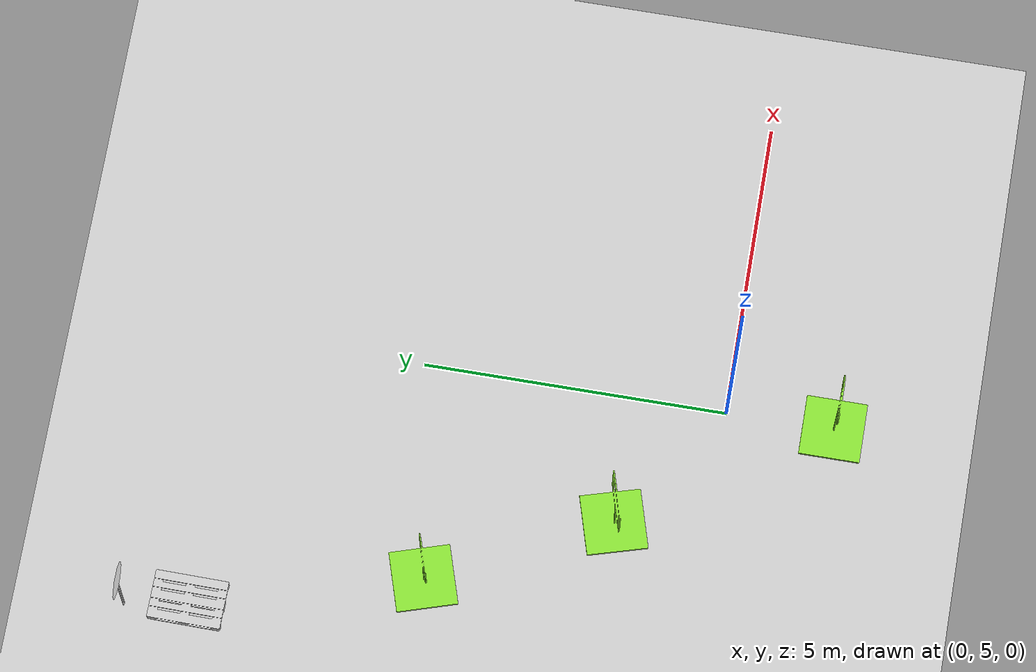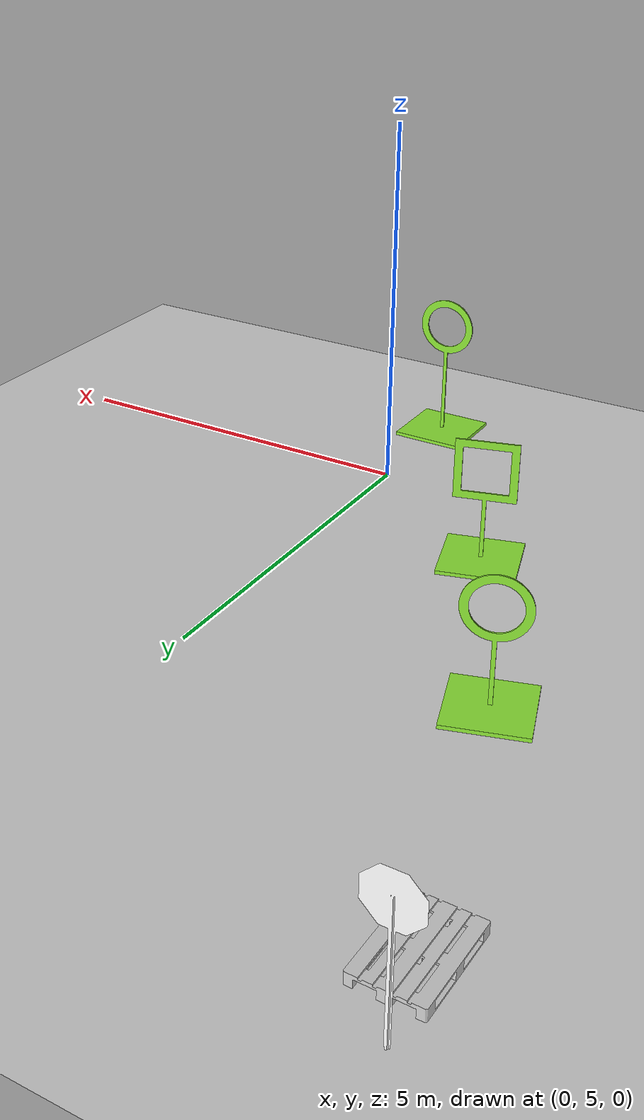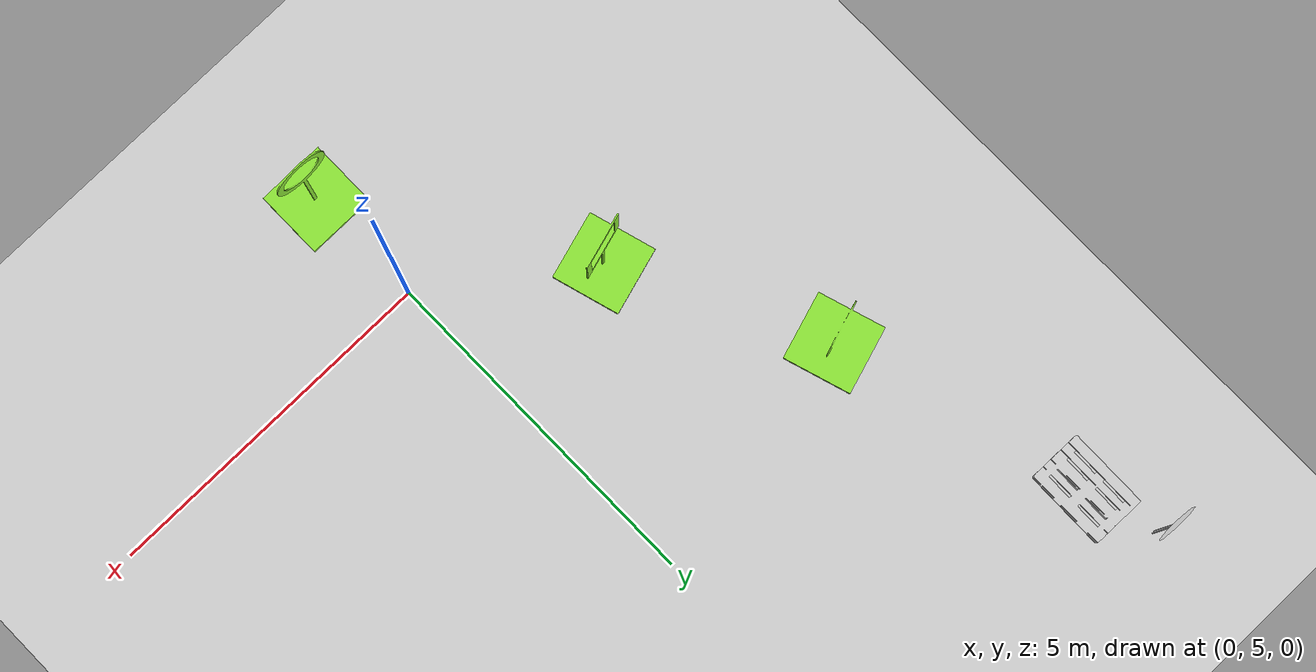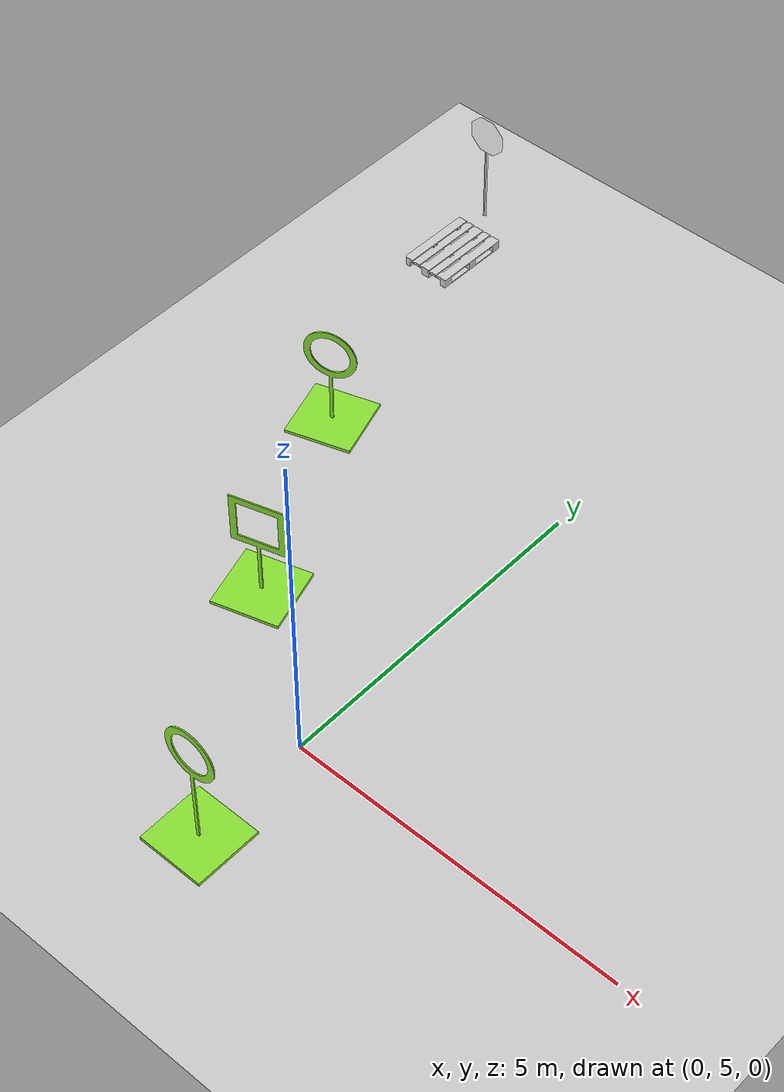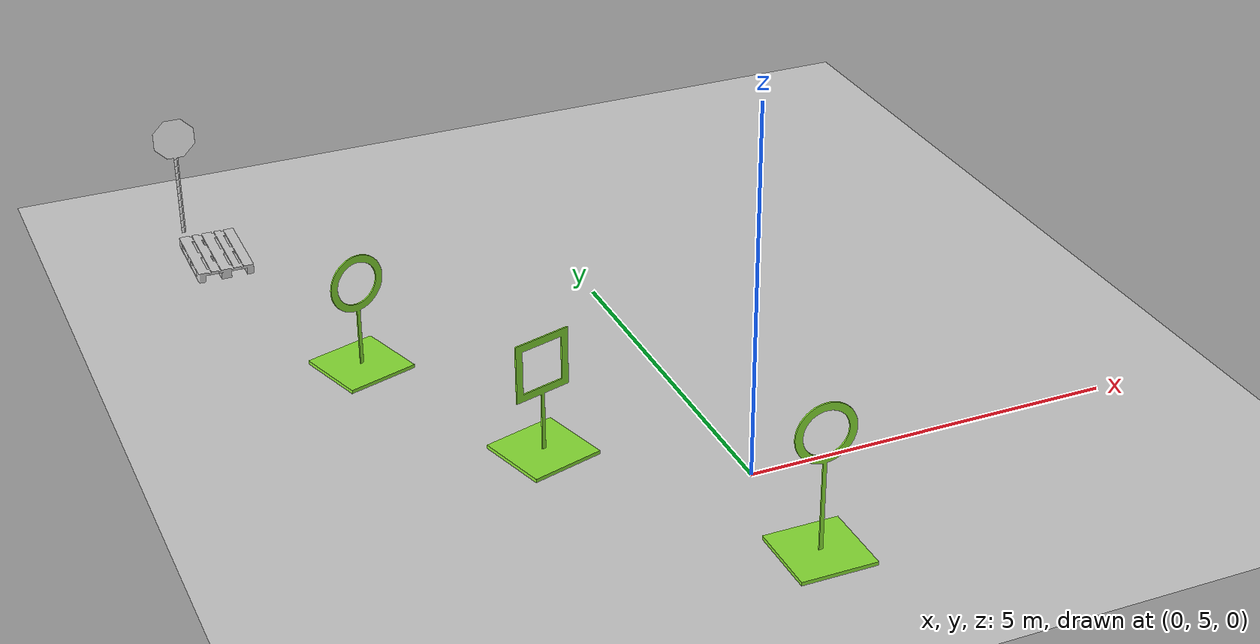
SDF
<sdf version="1.7">
 <world name="default">
  <physics name="normal" type="ode">
   <real_time_update_rate>1000</real_time_update_rate>
   <max_step_size>0.001</max_step_size>
   <real_time_factor>1</real_time_factor>
  </physics>
  <model name="ground_plane">
   <static>1</static>
   <link name="link">
    <collision name="collision">
     <geometry><plane><normal>0 0 1</normal><size>100 100</size></plane></geometry>
     <surface>
      <contact><collide_bitmask>65535</collide_bitmask></contact>
      <friction><ode><mu>100</mu><mu2>50</mu2></ode></friction>
     </surface>
    </collision>
    <visual name="visual">
     <cast_shadows>0</cast_shadows>
     <geometry><plane><normal>0 0 1</normal><size>100 100</size></plane></geometry>
     <material>
      <script><uri>file://media/materials/scripts/gazebo.material</uri><name>Gazebo/Grey</name></script>
     </material>
    </visual>
   </link>
  </model>
  <light name="sun" type="directional">
   <pose>0 0 10 0 -0 0</pose>
   <diffuse>0.8 0.8 0.8 1</diffuse>
   <specular>0.2 0.2 0.2 1</specular>
   <attenuation>
    <range>1000</range>
    <constant>0.9</constant>
    <linear>0.01</linear>
    <quadratic>0.001</quadratic>
   </attenuation>
   <direction>-0.5 0.1 -0.9</direction>
   <spot><inner_angle>0</inner_angle><outer_angle>0</outer_angle><falloff>0</falloff></spot>
  </light>
  <gravity>0 0 -9.8</gravity>
  <magnetic_field>6e-06 2.3e-05 -4.2e-05</magnetic_field>
  <atmosphere type="adiabatic"/>
  <scene><ambient>0.4 0.4 0.4 1</ambient><background>0.7 0.7 0.7 1</background><shadows>1</shadows></scene>
  <spherical_coordinates>
   <surface_model>EARTH_WGS84</surface_model>
   <latitude_deg>0</latitude_deg>
   <longitude_deg>0</longitude_deg>
   <elevation>0</elevation>
   <heading_deg>0</heading_deg>
  </spherical_coordinates>
  <model name="circle_gate_green">
   <link name="link_0">
    <inertial>
     <mass>1</mass>
     <inertia>
      <ixx>0.166667</ixx>
      <ixy>0</ixy>
      <ixz>0</ixz>
      <iyy>0.166667</iyy>
      <iyz>0</iyz>
      <izz>0.166667</izz>
     </inertia>
    </inertial>
    <visual name="visual">
     <geometry><mesh><uri>model://circle_gate_green/circle_gate.dae</uri><scale>1 1 1</scale></mesh></geometry>
     <material>
      <lighting>1</lighting>
      <script><uri>file://media/materials/scripts/gazebo.material</uri><name>Gazebo/Grey</name></script>
      <shader type="pixel"><normal_map>__default__</normal_map></shader>
      <ambient>0.541 0.886 0.204 1</ambient>
      <diffuse>0.7 0.7 0.7 1</diffuse>
      <specular>0.01 0.01 0.01 1</specular>
      <emissive>0 0 0 1</emissive>
     </material>
    </visual>
    <collision name="collision">
     <geometry><mesh><uri>model://circle_gate_green/circle_gate.dae</uri><scale>1 1 1</scale></mesh></geometry>
     <surface>
      <friction>
       <ode><mu>1</mu><mu2>1</mu2><fdir1>0 0 0</fdir1><slip1>0</slip1><slip2>0</slip2></ode>
       <torsional>
        <coefficient>1</coefficient>
        <patch_radius>0</patch_radius>
        <surface_radius>0</surface_radius>
        <use_patch_radius>1</use_patch_radius>
        <ode><slip>0</slip></ode>
       </torsional>
      </friction>
      <bounce><restitution_coefficient>0</restitution_coefficient><threshold>1e+06</threshold></bounce>
      <contact>
       <collide_without_contact>0</collide_without_contact>
       <collide_without_contact_bitmask>1</collide_without_contact_bitmask>
       <collide_bitmask>1</collide_bitmask>
       <ode>
        <soft_cfm>0</soft_cfm>
        <soft_erp>0.2</soft_erp>
        <kp>1e+13</kp>
        <kd>1</kd>
        <max_vel>0.01</max_vel>
        <min_depth>0</min_depth>
       </ode>
       <bullet>
        <split_impulse>1</split_impulse>
        <split_impulse_penetration_threshold>-0.01</split_impulse_penetration_threshold>
        <soft_cfm>0</soft_cfm>
        <soft_erp>0.2</soft_erp>
        <kp>1e+13</kp>
        <kd>1</kd>
       </bullet>
      </contact>
     </surface>
    </collision>
   </link>
   <static>0</static>
   <pose>0.020264 3.23889 -4e-06 0 -8e-06 0</pose>
  </model>
  <model name="square_gate_green">
   <link name="link_0">
    <inertial>
     <mass>1</mass>
     <inertia>
      <ixx>0.166667</ixx>
      <ixy>0</ixy>
      <ixz>0</ixz>
      <iyy>0.166667</iyy>
      <iyz>0</iyz>
      <izz>0.166667</izz>
     </inertia>
    </inertial>
    <visual name="visual">
     <geometry>
      <mesh><uri>model://square_gate_green_short/square_gate_short.dae</uri><scale>1 1 1</scale></mesh>
     </geometry>
     <material>
      <lighting>1</lighting>
      <script><uri>file://media/materials/scripts/gazebo.material</uri><name>Gazebo/Grey</name></script>
      <shader type="pixel"><normal_map>__default__</normal_map></shader>
      <ambient>0.541 0.886 0.204 1</ambient>
      <diffuse>0.7 0.7 0.7 1</diffuse>
      <specular>0.01 0.01 0.01 1</specular>
      <emissive>0 0 0 1</emissive>
     </material>
    </visual>
    <collision name="collision">
     <geometry>
      <mesh><uri>model://square_gate_green_short/square_gate_short.dae</uri><scale>1 1 1</scale></mesh>
     </geometry>
     <surface>
      <friction>
       <ode><mu>1</mu><mu2>1</mu2><fdir1>0 0 0</fdir1><slip1>0</slip1><slip2>0</slip2></ode>
       <torsional>
        <coefficient>1</coefficient>
        <patch_radius>0</patch_radius>
        <surface_radius>0</surface_radius>
        <use_patch_radius>1</use_patch_radius>
        <ode><slip>0</slip></ode>
       </torsional>
      </friction>
      <bounce><restitution_coefficient>0</restitution_coefficient><threshold>1e+06</threshold></bounce>
      <contact>
       <collide_without_contact>0</collide_without_contact>
       <collide_without_contact_bitmask>1</collide_without_contact_bitmask>
       <collide_bitmask>1</collide_bitmask>
       <ode>
        <soft_cfm>0</soft_cfm>
        <soft_erp>0.2</soft_erp>
        <kp>1e+13</kp>
        <kd>1</kd>
        <max_vel>0.01</max_vel>
        <min_depth>0</min_depth>
       </ode>
       <bullet>
        <split_impulse>1</split_impulse>
        <split_impulse_penetration_threshold>-0.01</split_impulse_penetration_threshold>
        <soft_cfm>0</soft_cfm>
        <soft_erp>0.2</soft_erp>
        <kp>1e+13</kp>
        <kd>1</kd>
       </bullet>
      </contact>
     </surface>
    </collision>
   </link>
   <static>0</static>
   <pose>-2.1328 6.51683 -4e-06 0 8e-06 0.283978</pose>
  </model>
  <model name="circle_gate_green_short">
   <link name="link_0">
    <inertial>
     <mass>1</mass>
     <inertia>
      <ixx>0.166667</ixx>
      <ixy>0</ixy>
      <ixz>0</ixz>
      <iyy>0.166667</iyy>
      <iyz>0</iyz>
      <izz>0.166667</izz>
     </inertia>
    </inertial>
    <visual name="visual">
     <geometry>
      <mesh><uri>model://circle_gate_green_short/circle_gate_short.dae</uri><scale>1 1 1</scale></mesh>
     </geometry>
     <material>
      <lighting>1</lighting>
      <script><uri>file://media/materials/scripts/gazebo.material</uri><name>Gazebo/Grey</name></script>
      <shader type="pixel"><normal_map>__default__</normal_map></shader>
      <ambient>0.541 0.886 0.204 1</ambient>
      <diffuse>0.7 0.7 0.7 1</diffuse>
      <specular>0.01 0.01 0.01 1</specular>
      <emissive>0 0 0 1</emissive>
     </material>
    </visual>
    <collision name="collision">
     <geometry>
      <mesh><uri>model://circle_gate_green_short/circle_gate_short.dae</uri><scale>1 1 1</scale></mesh>
     </geometry>
     <surface>
      <friction>
       <ode><mu>1</mu><mu2>1</mu2><fdir1>0 0 0</fdir1><slip1>0</slip1><slip2>0</slip2></ode>
       <torsional>
        <coefficient>1</coefficient>
        <patch_radius>0</patch_radius>
        <surface_radius>0</surface_radius>
        <use_patch_radius>1</use_patch_radius>
        <ode><slip>0</slip></ode>
       </torsional>
      </friction>
      <bounce><restitution_coefficient>0</restitution_coefficient><threshold>1e+06</threshold></bounce>
      <contact>
       <collide_without_contact>0</collide_without_contact>
       <collide_without_contact_bitmask>1</collide_without_contact_bitmask>
       <collide_bitmask>1</collide_bitmask>
       <ode>
        <soft_cfm>0</soft_cfm>
        <soft_erp>0.2</soft_erp>
        <kp>1e+13</kp>
        <kd>1</kd>
        <max_vel>0.01</max_vel>
        <min_depth>0</min_depth>
       </ode>
       <bullet>
        <split_impulse>1</split_impulse>
        <split_impulse_penetration_threshold>-0.01</split_impulse_penetration_threshold>
        <soft_cfm>0</soft_cfm>
        <soft_erp>0.2</soft_erp>
        <kp>1e+13</kp>
        <kd>1</kd>
       </bullet>
      </contact>
     </surface>
    </collision>
   </link>
   <static>0</static>
   <pose>-3.5763 9.3973 -4e-06 -0 -8e-06 0.305183</pose>
  </model>
  <model name="Stop Sign">
   <static>1</static>
   <link name="link">
    <collision name="collision">
     <geometry><mesh><uri>model://stop_sign/meshes/stop_sign.dae</uri></mesh></geometry>
    </collision>
    <visual name="visual">
     <geometry><mesh><uri>model://stop_sign/meshes/stop_sign.dae</uri></mesh></geometry>
     <material>
      <script>
       <uri>model://stop_sign/materials/scripts</uri>
       <uri>model://stop_sign/materials/textures</uri>
       <name>StopSign/Diffuse</name>
      </script>
     </material>
    </visual>
   </link>
   <pose>-4.81262 14.077 0 0 -0 0</pose>
  </model>
  <model name="euro_pallet">
   <link name="link">
    <inertial>
     <mass>20</mass>
     <inertia><ixx>2.43</ixx><ixy>0</ixy><ixz>0</ixz><iyy>1.1</iyy><iyz>0</iyz><izz>3.47</izz></inertia>
    </inertial>
    <collision name="collision">
     <pose>0 0 0.05 0 -0 0</pose>
     <geometry><mesh><uri>model://euro_pallet/meshes/pallet.dae</uri><scale>0.1 0.1 0.1</scale></mesh></geometry>
    </collision>
    <visual name="visual">
     <pose>0 0 0.05 0 -0 0</pose>
     <geometry><mesh><uri>model://euro_pallet/meshes/pallet.dae</uri><scale>0.1 0.1 0.1</scale></mesh></geometry>
    </visual>
   </link>
   <pose>-4.58012 13.0664 0.071994 0 2.1e-05 -0.013016</pose>
  </model>
 </world>
</sdf>
